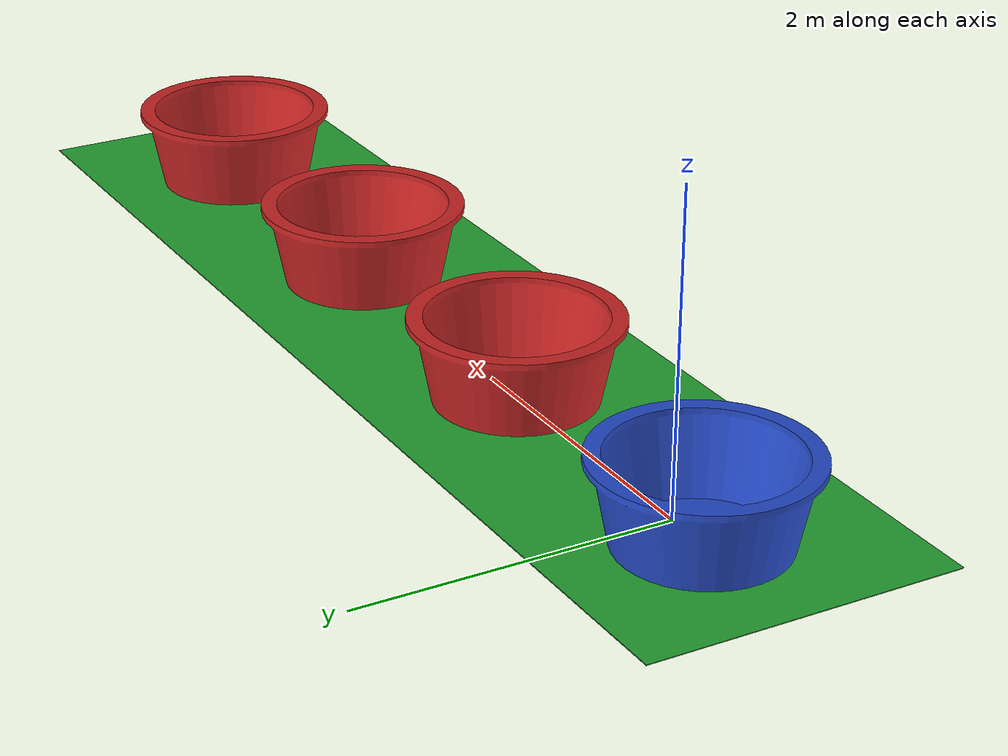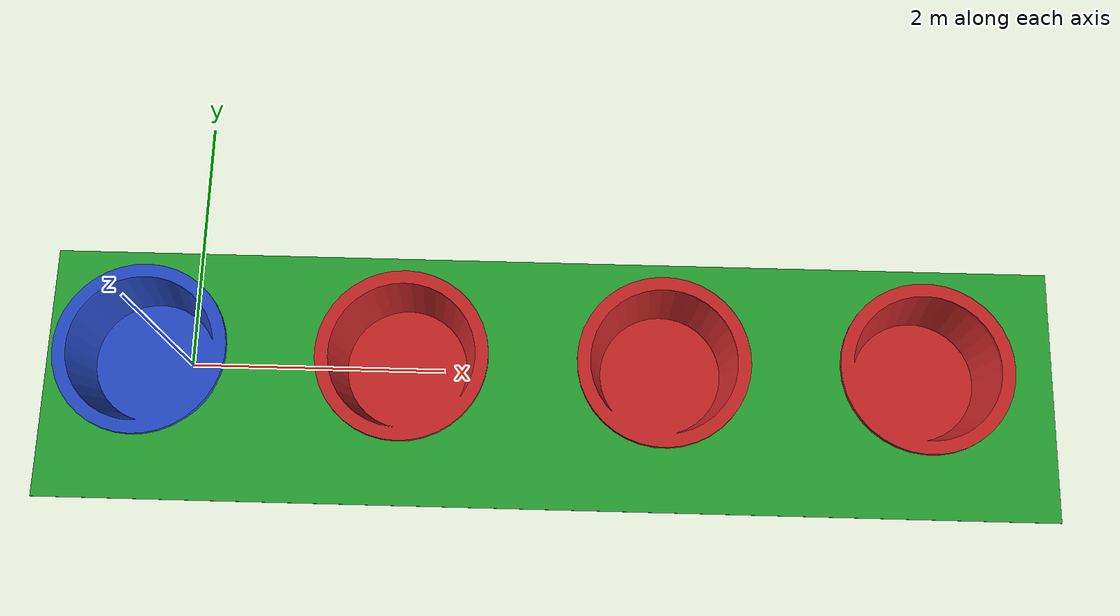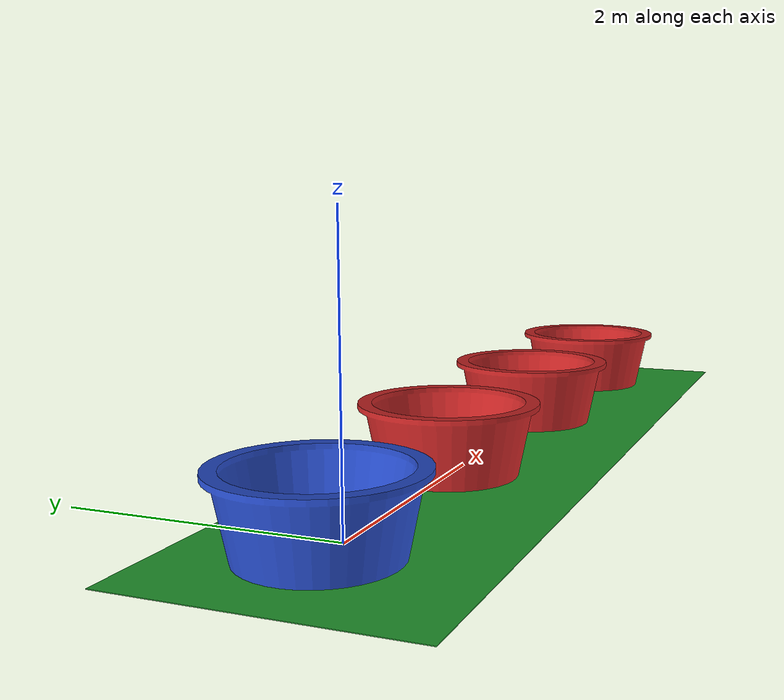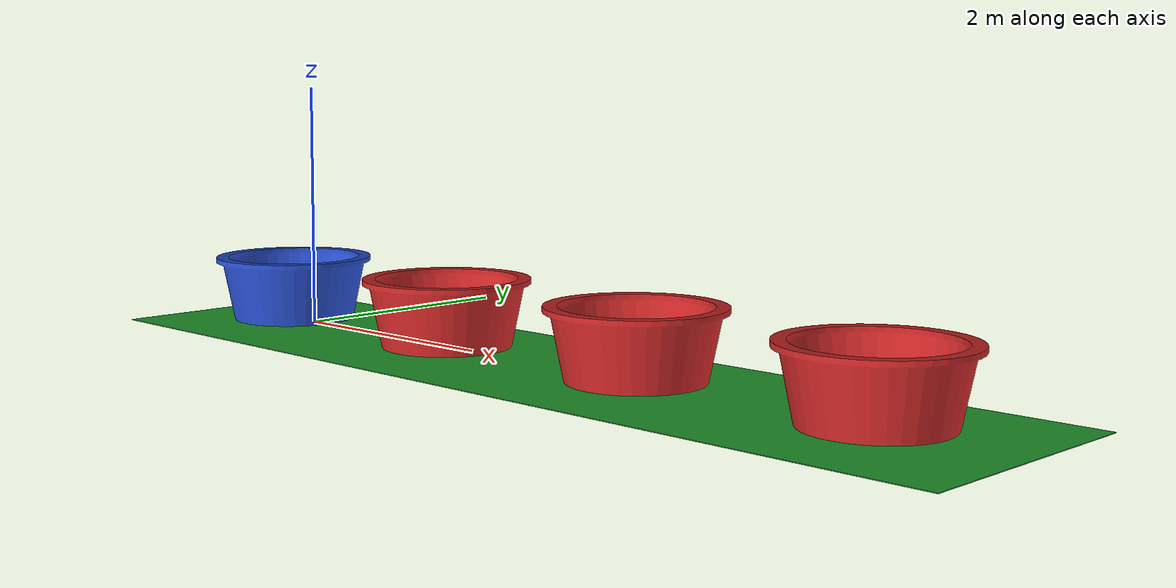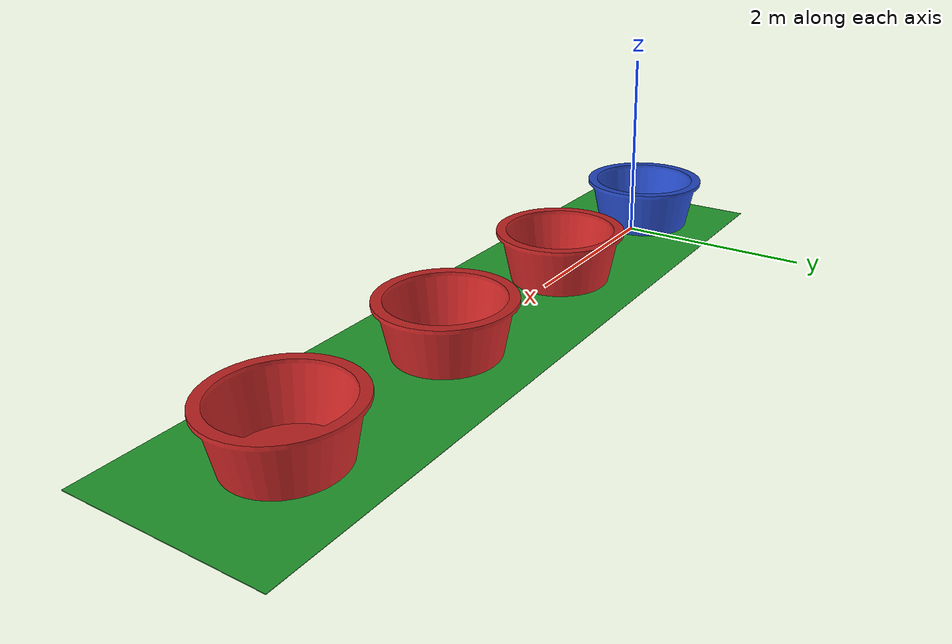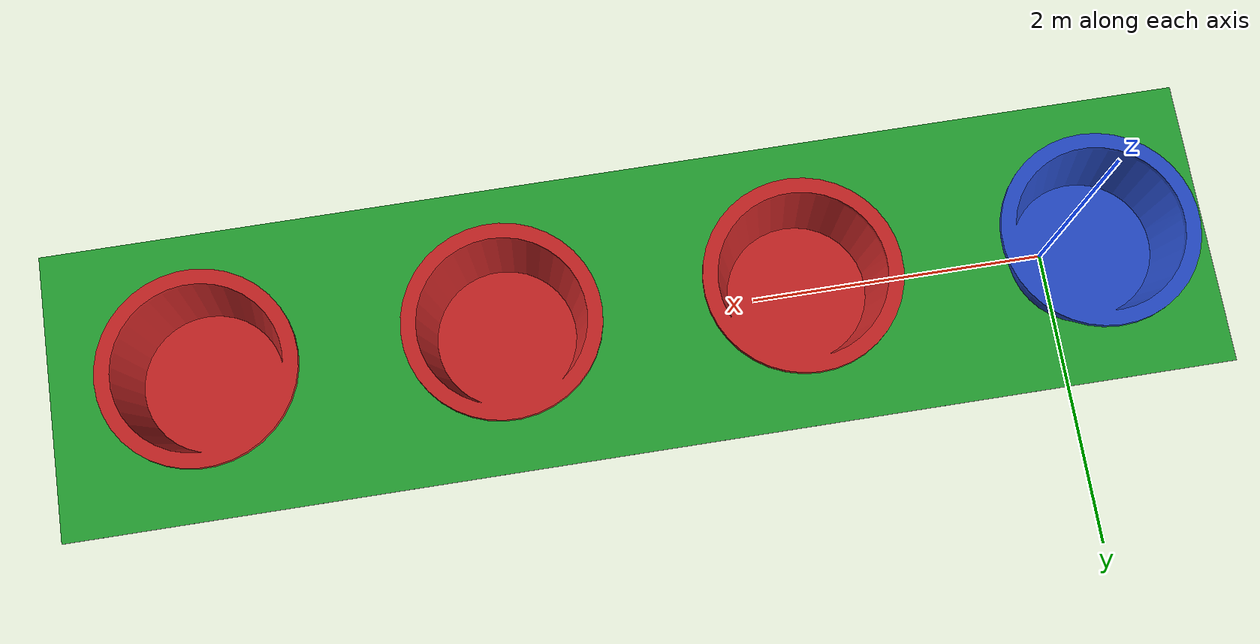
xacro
<?xml version="1.0"?>
<robot
  name="buckets" xmlns:xacro="http://www.ros.org/wiki/xacro">

  <xacro:include filename="$(find buckets)/urdf/materials.xacro" />
  <xacro:include filename="$(find buckets)/urdf/buckets.gazebo" />
  <link
    name="base_green">
    <inertial>
      <origin
        xyz="2.8272 -0.077022 0.0025"
        rpy="0 0 0" />
      <mass
        value="80" />
      <inertia
        ixx="26.667"
        ixy="5.181E-15"
        ixz="-3.1133E-17"
        iyy="426.67"
        iyz="1.6364E-15"
        izz="453.33" />
    </inertial>
    <visual>
      <origin
        xyz="0 0 0"
        rpy="0 0 0" />
      <geometry>
        <mesh
          filename="package://buckets/meshes/base_green.STL" />
      </geometry>
      <material
        name="green">
      </material>
    </visual>
    <collision>
      <origin
        xyz="0 0 0"
        rpy="0 0 0" />
      <geometry>
        <mesh
          filename="package://buckets/meshes/base_green.STL" />
      </geometry>
    </collision>
  </link>
  <link
    name="Bucket_1_Link">
    <inertial>
      <origin
        xyz="-3.8164E-17 0.2323 -1.1102E-16"
        rpy="0 0 0" />
      <mass
        value="469.79" />
      <inertia
        ixx="79.945"
        ixy="-8.3732E-15"
        ixz="-2.176E-14"
        iyy="123.59"
        iyz="-2.3009E-14"
        izz="79.945" />
    </inertial>
    <visual>
      <origin
        xyz="0 0 0"
        rpy="0 0 0" />
      <geometry>
        <mesh
          filename="package://buckets/meshes/Bucket_1_Link.STL" />
      </geometry>
      <material
        name="blue">
      </material>
    </visual>
    <collision>
      <origin
        xyz="0 0 0"
        rpy="0 0 0" />
      <geometry>
        <mesh
          filename="package://buckets/meshes/Bucket_1_Link.STL" />
      </geometry>
    </collision>
  </link>
  <joint
    name="Bucket_1"
    type="fixed">
    <origin
      xyz="-0.29023 0.0018647 0"
      rpy="1.5708 -1.985E-16 1.6399" />
    <parent
      link="base_green" />
    <child
      link="Bucket_1_Link" />
    <axis
      xyz="0 1 0" />
  </joint>
  <link
    name="Bucket_2_Link">
    <inertial>
      <origin
        xyz="-2.0817E-16 0.2323 2.2204E-16"
        rpy="0 0 0" />
      <mass
        value="469.79" />
      <inertia
        ixx="79.945"
        ixy="-9.471E-16"
        ixz="-6.3949E-14"
        iyy="123.59"
        iyz="-1.4616E-14"
        izz="79.945" />
    </inertial>
    <visual>
      <origin
        xyz="0 0 0"
        rpy="0 0 0" />
      <geometry>
        <mesh
          filename="package://buckets/meshes/Bucket_2_Link.STL" />
      </geometry>
      <material
        name="red">
      </material>
    </visual>
    <collision>
      <origin
        xyz="0 0 0"
        rpy="0 0 0" />
      <geometry>
        <mesh
          filename="package://buckets/meshes/Bucket_2_Link.STL" />
      </geometry>
    </collision>
  </link>
  <joint
    name="Bucket_2"
    type="fixed">
    <origin
      xyz="1.7098 0.0018647 0"
      rpy="1.5708 2.3421E-16 1.6354" />
    <parent
      link="base_green" />
    <child
      link="Bucket_2_Link" />
    <axis
      xyz="0 1 0" />
  </joint>
  <link
    name="Bucket_3_Link">
    <inertial>
      <origin
        xyz="-6.8001E-16 0.2323 -8.8818E-16"
        rpy="0 0 0" />
      <mass
        value="469.79" />
      <inertia
        ixx="79.945"
        ixy="6.3819E-15"
        ixz="2.6867E-14"
        iyy="123.59"
        iyz="3.1879E-14"
        izz="79.945" />
    </inertial>
    <visual>
      <origin
        xyz="0 0 0"
        rpy="0 0 0" />
      <geometry>
        <mesh
          filename="package://buckets/meshes/Bucket_3_Link.STL" />
      </geometry>
      <material
        name="red">
      </material>
    </visual>
    <collision>
      <origin
        xyz="0 0 0"
        rpy="0 0 0" />
      <geometry>
        <mesh
          filename="package://buckets/meshes/Bucket_3_Link.STL" />
      </geometry>
    </collision>
  </link>
  <joint
    name="Bucket_3"
    type="fixed">
    <origin
      xyz="3.7098 0.0018647 0"
      rpy="1.5708 6.1211E-17 1.5454" />
    <parent
      link="base_green" />
    <child
      link="Bucket_3_Link" />
    <axis
      xyz="0 1 0" />
  </joint>
  <link
    name="Bucket_4_Link">
    <inertial>
      <origin
        xyz="-3.0531E-16 0.2323 -8.8818E-16"
        rpy="0 0 0" />
      <mass
        value="469.79" />
      <inertia
        ixx="79.945"
        ixy="-1.696E-14"
        ixz="-4.9072E-14"
        iyy="123.59"
        iyz="5.0574E-14"
        izz="79.945" />
    </inertial>
    <visual>
      <origin
        xyz="0 0 0"
        rpy="0 0 0" />
      <geometry>
        <mesh
          filename="package://buckets/meshes/Bucket_4_Link.STL" />
      </geometry>
      <material
        name="red">
      </material>
    </visual>
    <collision>
      <origin
        xyz="0 0 0"
        rpy="0 0 0" />
      <geometry>
        <mesh
          filename="package://buckets/meshes/Bucket_4_Link.STL" />
      </geometry>
    </collision>
  </link>
  <joint
    name="Bucket_4"
    type="fixed">
    <origin
      xyz="5.7098 0.0018647 0"
      rpy="1.5708 6.1226E-17 1.5822" />
    <parent
      link="base_green" />
    <child
      link="Bucket_4_Link" />
    <axis
      xyz="0 1 0" />
  </joint>
</robot>
